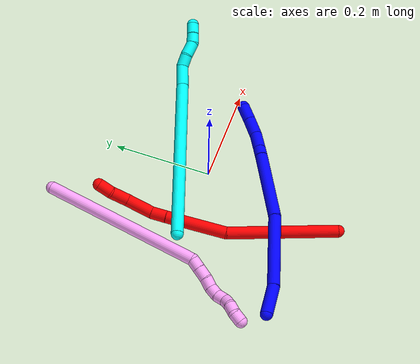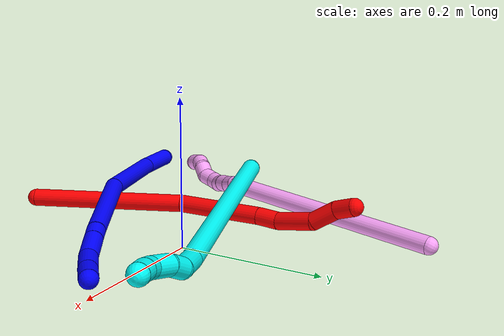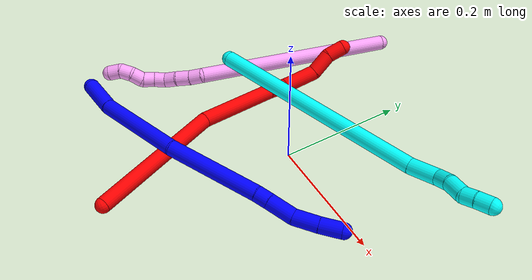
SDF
<sdf version="1.7">
 <world name="default">
  <model name="1">
   <static>0</static>
   <link name="1">
    <collision name="collision-cylinder-e_1_1_4">
     <pose>0.006811 0.014128 -0.026412 -2.6504 0.223582 -0.842146</pose>
     <geometry><cylinder><radius>0.0125</radius><length>0.061436</length></cylinder></geometry>
     <surface>
      <friction><ode><mu>1.16</mu><mu2>1.16</mu2><slip1>0</slip1><slip2>0</slip2></ode></friction>
      <contact><ode><kp>1e+06</kp><kd>1</kd><max_vel>0</max_vel><min_depth>0.001</min_depth></ode></contact>
     </surface>
    </collision>
    <visual name="visual-cylinder-e_1_1_4">
     <pose>0.006811 0.014128 -0.026412 -2.6504 0.223582 -0.842146</pose>
     <geometry><cylinder><radius>0.0125</radius><length>0.061436</length></cylinder></geometry>
     <material><ambient>0 0 1 1</ambient></material>
    </visual>
    <collision name="collision-cylinder-e_2_4_5">
     <pose>0.019662 0.052117 -0.123204 -2.81473 0.081095 -0.48247</pose>
     <geometry><cylinder><radius>0.0125</radius><length>0.149119</length></cylinder></geometry>
     <surface>
      <friction><ode><mu>1.16</mu><mu2>1.16</mu2><slip1>0</slip1><slip2>0</slip2></ode></friction>
      <contact><ode><kp>1e+06</kp><kd>1</kd><max_vel>0</max_vel><min_depth>0.001</min_depth></ode></contact>
     </surface>
    </collision>
    <visual name="visual-cylinder-e_2_4_5">
     <pose>0.019662 0.052117 -0.123204 -2.81473 0.081095 -0.48247</pose>
     <geometry><cylinder><radius>0.0125</radius><length>0.149119</length></cylinder></geometry>
     <material><ambient>0 0 1 1</ambient></material>
    </visual>
    <collision name="collision-cylinder-e_3_5_6">
     <pose>0.034975 0.082696 -0.268563 -3.05222 0.122565 -1.88207</pose>
     <geometry><cylinder><radius>0.0125</radius><length>0.151698</length></cylinder></geometry>
     <surface>
      <friction><ode><mu>1.16</mu><mu2>1.16</mu2><slip1>0</slip1><slip2>0</slip2></ode></friction>
      <contact><ode><kp>1e+06</kp><kd>1</kd><max_vel>0</max_vel><min_depth>0.001</min_depth></ode></contact>
     </surface>
    </collision>
    <visual name="visual-cylinder-e_3_5_6">
     <pose>0.034975 0.082696 -0.268563 -3.05222 0.122565 -1.88207</pose>
     <geometry><cylinder><radius>0.0125</radius><length>0.151698</length></cylinder></geometry>
     <material><ambient>0 0 1 1</ambient></material>
    </visual>
    <collision name="collision-cylinder-e_4_6_7">
     <pose>0.046597 0.089692 -0.353831 -3.11467 0.224391 -2.90373</pose>
     <geometry><cylinder><radius>0.0125</radius><length>0.021113</length></cylinder></geometry>
     <surface>
      <friction><ode><mu>1.16</mu><mu2>1.16</mu2><slip1>0</slip1><slip2>0</slip2></ode></friction>
      <contact><ode><kp>1e+06</kp><kd>1</kd><max_vel>0</max_vel><min_depth>0.001</min_depth></ode></contact>
     </surface>
    </collision>
    <visual name="visual-cylinder-e_4_6_7">
     <pose>0.046597 0.089692 -0.353831 -3.11467 0.224391 -2.90373</pose>
     <geometry><cylinder><radius>0.0125</radius><length>0.021113</length></cylinder></geometry>
     <material><ambient>0 0 1 1</ambient></material>
    </visual>
    <collision name="collision-cylinder-e_5_7_8">
     <pose>0.054109 0.090198 -0.384423 -3.13034 0.248986 -3.05176</pose>
     <geometry><cylinder><radius>0.0125</radius><length>0.041903</length></cylinder></geometry>
     <surface>
      <friction><ode><mu>1.16</mu><mu2>1.16</mu2><slip1>0</slip1><slip2>0</slip2></ode></friction>
      <contact><ode><kp>1e+06</kp><kd>1</kd><max_vel>0</max_vel><min_depth>0.001</min_depth></ode></contact>
     </surface>
    </collision>
    <visual name="visual-cylinder-e_5_7_8">
     <pose>0.054109 0.090198 -0.384423 -3.13034 0.248986 -3.05176</pose>
     <geometry><cylinder><radius>0.0125</radius><length>0.041903</length></cylinder></geometry>
     <material><ambient>0 0 1 1</ambient></material>
    </visual>
    <collision name="collision-cylinder-e_6_8_9">
     <pose>0.058661 0.090044 -0.424557 3.12232 -0.03077 -2.02262</pose>
     <geometry><cylinder><radius>0.0125</radius><length>0.039686</length></cylinder></geometry>
     <surface>
      <friction><ode><mu>1.16</mu><mu2>1.16</mu2><slip1>0</slip1><slip2>0</slip2></ode></friction>
      <contact><ode><kp>1e+06</kp><kd>1</kd><max_vel>0</max_vel><min_depth>0.001</min_depth></ode></contact>
     </surface>
    </collision>
    <visual name="visual-cylinder-e_6_8_9">
     <pose>0.058661 0.090044 -0.424557 3.12232 -0.03077 -2.02262</pose>
     <geometry><cylinder><radius>0.0125</radius><length>0.039686</length></cylinder></geometry>
     <material><ambient>0 0 1 1</ambient></material>
    </visual>
    <collision name="collision-cylinder-e_7_9_2">
     <pose>0.056329 0.089189 -0.461818 3.1145 -0.098383 -2.60448</pose>
     <geometry><cylinder><radius>0.0125</radius><length>0.035046</length></cylinder></geometry>
     <surface>
      <friction><ode><mu>1.16</mu><mu2>1.16</mu2><slip1>0</slip1><slip2>0</slip2></ode></friction>
      <contact><ode><kp>1e+06</kp><kd>1</kd><max_vel>0</max_vel><min_depth>0.001</min_depth></ode></contact>
     </surface>
    </collision>
    <visual name="visual-cylinder-e_7_9_2">
     <pose>0.056329 0.089189 -0.461818 3.1145 -0.098383 -2.60448</pose>
     <geometry><cylinder><radius>0.0125</radius><length>0.035046</length></cylinder></geometry>
     <material><ambient>0 0 1 1</ambient></material>
    </visual>
    <collision name="collision-sphere-2">
     <pose>0.054608 0.088717 -0.47925 0 -0 0</pose>
     <geometry><sphere><radius>0.0125</radius></sphere></geometry>
     <surface>
      <friction><ode><mu>1.16</mu><mu2>1.16</mu2><slip1>0</slip1><slip2>0</slip2></ode></friction>
      <contact><ode><kp>1e+06</kp><kd>1</kd><max_vel>0</max_vel><min_depth>0.001</min_depth></ode></contact>
     </surface>
    </collision>
    <visual name="visual-sphere-2">
     <pose>0.054608 0.088717 -0.47925 0 -0 0</pose>
     <geometry><sphere><radius>0.0125</radius></sphere></geometry>
     <material><ambient>0 0 1 1</ambient></material>
    </visual>
    <collision name="collision-sphere-9">
     <pose>0.058051 0.089662 -0.444387 0 -0 0</pose>
     <geometry><sphere><radius>0.0125</radius></sphere></geometry>
     <surface>
      <friction><ode><mu>1.16</mu><mu2>1.16</mu2><slip1>0</slip1><slip2>0</slip2></ode></friction>
      <contact><ode><kp>1e+06</kp><kd>1</kd><max_vel>0</max_vel><min_depth>0.001</min_depth></ode></contact>
     </surface>
    </collision>
    <visual name="visual-sphere-9">
     <pose>0.058051 0.089662 -0.444387 0 -0 0</pose>
     <geometry><sphere><radius>0.0125</radius></sphere></geometry>
     <material><ambient>0 0 1 1</ambient></material>
    </visual>
    <collision name="collision-sphere-4">
     <pose>0.013622 0.028257 -0.052824 0 -0 0</pose>
     <geometry><sphere><radius>0.0125</radius></sphere></geometry>
     <surface>
      <friction><ode><mu>1.16</mu><mu2>1.16</mu2><slip1>0</slip1><slip2>0</slip2></ode></friction>
      <contact><ode><kp>1e+06</kp><kd>1</kd><max_vel>0</max_vel><min_depth>0.001</min_depth></ode></contact>
     </surface>
    </collision>
    <visual name="visual-sphere-4">
     <pose>0.013622 0.028257 -0.052824 0 -0 0</pose>
     <geometry><sphere><radius>0.0125</radius></sphere></geometry>
     <material><ambient>0 0 1 1</ambient></material>
    </visual>
    <collision name="collision-sphere-1">
     <geometry><sphere><radius>0.0125</radius></sphere></geometry>
     <surface>
      <friction><ode><mu>1.16</mu><mu2>1.16</mu2><slip1>0</slip1><slip2>0</slip2></ode></friction>
      <contact><ode><kp>1e+06</kp><kd>1</kd><max_vel>0</max_vel><min_depth>0.001</min_depth></ode></contact>
     </surface>
    </collision>
    <visual name="visual-sphere-1">
     <geometry><sphere><radius>0.0125</radius></sphere></geometry>
     <material><ambient>0 0 1 1</ambient></material>
    </visual>
    <collision name="collision-sphere-8">
     <pose>0.059272 0.090426 -0.404727 0 -0 0</pose>
     <geometry><sphere><radius>0.0125</radius></sphere></geometry>
     <surface>
      <friction><ode><mu>1.16</mu><mu2>1.16</mu2><slip1>0</slip1><slip2>0</slip2></ode></friction>
      <contact><ode><kp>1e+06</kp><kd>1</kd><max_vel>0</max_vel><min_depth>0.001</min_depth></ode></contact>
     </surface>
    </collision>
    <visual name="visual-sphere-8">
     <pose>0.059272 0.090426 -0.404727 0 -0 0</pose>
     <geometry><sphere><radius>0.0125</radius></sphere></geometry>
     <material><ambient>0 0 1 1</ambient></material>
    </visual>
    <collision name="collision-sphere-5">
     <pose>0.025701 0.075977 -0.193583 0 -0 0</pose>
     <geometry><sphere><radius>0.0125</radius></sphere></geometry>
     <surface>
      <friction><ode><mu>1.16</mu><mu2>1.16</mu2><slip1>0</slip1><slip2>0</slip2></ode></friction>
      <contact><ode><kp>1e+06</kp><kd>1</kd><max_vel>0</max_vel><min_depth>0.001</min_depth></ode></contact>
     </surface>
    </collision>
    <visual name="visual-sphere-5">
     <pose>0.025701 0.075977 -0.193583 0 -0 0</pose>
     <geometry><sphere><radius>0.0125</radius></sphere></geometry>
     <material><ambient>0 0 1 1</ambient></material>
    </visual>
    <collision name="collision-sphere-6">
     <pose>0.044248 0.089415 -0.343543 0 -0 0</pose>
     <geometry><sphere><radius>0.0125</radius></sphere></geometry>
     <surface>
      <friction><ode><mu>1.16</mu><mu2>1.16</mu2><slip1>0</slip1><slip2>0</slip2></ode></friction>
      <contact><ode><kp>1e+06</kp><kd>1</kd><max_vel>0</max_vel><min_depth>0.001</min_depth></ode></contact>
     </surface>
    </collision>
    <visual name="visual-sphere-6">
     <pose>0.044248 0.089415 -0.343543 0 -0 0</pose>
     <geometry><sphere><radius>0.0125</radius></sphere></geometry>
     <material><ambient>0 0 1 1</ambient></material>
    </visual>
    <collision name="collision-sphere-7">
     <pose>0.048946 0.089969 -0.364119 0 -0 0</pose>
     <geometry><sphere><radius>0.0125</radius></sphere></geometry>
     <surface>
      <friction><ode><mu>1.16</mu><mu2>1.16</mu2><slip1>0</slip1><slip2>0</slip2></ode></friction>
      <contact><ode><kp>1e+06</kp><kd>1</kd><max_vel>0</max_vel><min_depth>0.001</min_depth></ode></contact>
     </surface>
    </collision>
    <visual name="visual-sphere-7">
     <pose>0.048946 0.089969 -0.364119 0 -0 0</pose>
     <geometry><sphere><radius>0.0125</radius></sphere></geometry>
     <material><ambient>0 0 1 1</ambient></material>
    </visual>
    <inertial>
     <pose>0.032418 0.067114 -0.234695 0 -0 0</pose>
     <mass>0.5</mass>
     <inertia>
      <ixx>-0.000275</ixx>
      <ixy>0</ixy>
      <ixz>0</ixz>
      <iyy>-0.000564</iyy>
      <iyz>0</iyz>
      <izz>-0.000229</izz>
     </inertia>
    </inertial>
   </link>
   <pose>-0.275324 -0.213417 0.031388 1.51904 1.0675 -0.989179</pose>
  </model>
  <model name="2">
   <static>0</static>
   <link name="2">
    <collision name="collision-cylinder-e_1_1_4">
     <pose>-0.018176 0.059608 -0.091629 -2.56485 -0.164773 0.542975</pose>
     <geometry><cylinder><radius>0.0125</radius><length>0.221625</length></cylinder></geometry>
     <surface>
      <friction><ode><mu>1.16</mu><mu2>1.16</mu2><slip1>0</slip1><slip2>0</slip2></ode></friction>
      <contact><ode><kp>1e+06</kp><kd>1</kd><max_vel>0</max_vel><min_depth>0.001</min_depth></ode></contact>
     </surface>
    </collision>
    <visual name="visual-cylinder-e_1_1_4">
     <pose>-0.018176 0.059608 -0.091629 -2.56485 -0.164773 0.542975</pose>
     <geometry><cylinder><radius>0.0125</radius><length>0.221625</length></cylinder></geometry>
     <material><ambient>1 0 0 1</ambient></material>
    </visual>
    <collision name="collision-cylinder-e_2_4_5">
     <pose>-0.05056 0.134498 -0.242019 -2.88715 -0.229863 1.46839</pose>
     <geometry><cylinder><radius>0.0125</radius><length>0.12471</length></cylinder></geometry>
     <surface>
      <friction><ode><mu>1.16</mu><mu2>1.16</mu2><slip1>0</slip1><slip2>0</slip2></ode></friction>
      <contact><ode><kp>1e+06</kp><kd>1</kd><max_vel>0</max_vel><min_depth>0.001</min_depth></ode></contact>
     </surface>
    </collision>
    <visual name="visual-cylinder-e_2_4_5">
     <pose>-0.05056 0.134498 -0.242019 -2.88715 -0.229863 1.46839</pose>
     <geometry><cylinder><radius>0.0125</radius><length>0.12471</length></cylinder></geometry>
     <material><ambient>1 0 0 1</ambient></material>
    </visual>
    <collision name="collision-cylinder-e_3_5_6">
     <pose>-0.069348 0.152866 -0.315447 -2.9342 -0.29655 1.92457</pose>
     <geometry><cylinder><radius>0.0125</radius><length>0.031348</length></cylinder></geometry>
     <surface>
      <friction><ode><mu>1.16</mu><mu2>1.16</mu2><slip1>0</slip1><slip2>0</slip2></ode></friction>
      <contact><ode><kp>1e+06</kp><kd>1</kd><max_vel>0</max_vel><min_depth>0.001</min_depth></ode></contact>
     </surface>
    </collision>
    <visual name="visual-cylinder-e_3_5_6">
     <pose>-0.069348 0.152866 -0.315447 -2.9342 -0.29655 1.92457</pose>
     <geometry><cylinder><radius>0.0125</radius><length>0.031348</length></cylinder></geometry>
     <material><ambient>1 0 0 1</ambient></material>
    </visual>
    <collision name="collision-cylinder-e_4_6_7">
     <pose>-0.075839 0.158396 -0.357921 -3.05393 -0.068382 1.3247</pose>
     <geometry><cylinder><radius>0.0125</radius><length>0.055955</length></cylinder></geometry>
     <surface>
      <friction><ode><mu>1.16</mu><mu2>1.16</mu2><slip1>0</slip1><slip2>0</slip2></ode></friction>
      <contact><ode><kp>1e+06</kp><kd>1</kd><max_vel>0</max_vel><min_depth>0.001</min_depth></ode></contact>
     </surface>
    </collision>
    <visual name="visual-cylinder-e_4_6_7">
     <pose>-0.075839 0.158396 -0.357921 -3.05393 -0.068382 1.3247</pose>
     <geometry><cylinder><radius>0.0125</radius><length>0.055955</length></cylinder></geometry>
     <material><ambient>1 0 0 1</ambient></material>
    </visual>
    <collision name="collision-cylinder-e_5_7_8">
     <pose>-0.071465 0.165715 -0.402671 -2.86147 0.342465 -1.77361</pose>
     <geometry><cylinder><radius>0.0125</radius><length>0.03744</length></cylinder></geometry>
     <surface>
      <friction><ode><mu>1.16</mu><mu2>1.16</mu2><slip1>0</slip1><slip2>0</slip2></ode></friction>
      <contact><ode><kp>1e+06</kp><kd>1</kd><max_vel>0</max_vel><min_depth>0.001</min_depth></ode></contact>
     </surface>
    </collision>
    <visual name="visual-cylinder-e_5_7_8">
     <pose>-0.071465 0.165715 -0.402671 -2.86147 0.342465 -1.77361</pose>
     <geometry><cylinder><radius>0.0125</radius><length>0.03744</length></cylinder></geometry>
     <material><ambient>1 0 0 1</ambient></material>
    </visual>
    <collision name="collision-cylinder-e_6_8_2">
     <pose>-0.064114 0.171036 -0.434032 -3.11069 0.073638 -2.3472</pose>
     <geometry><cylinder><radius>0.0125</radius><length>0.028923</length></cylinder></geometry>
     <surface>
      <friction><ode><mu>1.16</mu><mu2>1.16</mu2><slip1>0</slip1><slip2>0</slip2></ode></friction>
      <contact><ode><kp>1e+06</kp><kd>1</kd><max_vel>0</max_vel><min_depth>0.001</min_depth></ode></contact>
     </surface>
    </collision>
    <visual name="visual-cylinder-e_6_8_2">
     <pose>-0.064114 0.171036 -0.434032 -3.11069 0.073638 -2.3472</pose>
     <geometry><cylinder><radius>0.0125</radius><length>0.028923</length></cylinder></geometry>
     <material><ambient>1 0 0 1</ambient></material>
    </visual>
    <collision name="collision-sphere-2">
     <pose>-0.06305 0.171481 -0.448447 0 -0 0</pose>
     <geometry><sphere><radius>0.0125</radius></sphere></geometry>
     <surface>
      <friction><ode><mu>1.16</mu><mu2>1.16</mu2><slip1>0</slip1><slip2>0</slip2></ode></friction>
      <contact><ode><kp>1e+06</kp><kd>1</kd><max_vel>0</max_vel><min_depth>0.001</min_depth></ode></contact>
     </surface>
    </collision>
    <visual name="visual-sphere-2">
     <pose>-0.06305 0.171481 -0.448447 0 -0 0</pose>
     <geometry><sphere><radius>0.0125</radius></sphere></geometry>
     <material><ambient>1 0 0 1</ambient></material>
    </visual>
    <collision name="collision-sphere-4">
     <pose>-0.036353 0.119215 -0.183259 0 -0 0</pose>
     <geometry><sphere><radius>0.0125</radius></sphere></geometry>
     <surface>
      <friction><ode><mu>1.16</mu><mu2>1.16</mu2><slip1>0</slip1><slip2>0</slip2></ode></friction>
      <contact><ode><kp>1e+06</kp><kd>1</kd><max_vel>0</max_vel><min_depth>0.001</min_depth></ode></contact>
     </surface>
    </collision>
    <visual name="visual-sphere-4">
     <pose>-0.036353 0.119215 -0.183259 0 -0 0</pose>
     <geometry><sphere><radius>0.0125</radius></sphere></geometry>
     <material><ambient>1 0 0 1</ambient></material>
    </visual>
    <collision name="collision-sphere-1">
     <geometry><sphere><radius>0.0125</radius></sphere></geometry>
     <surface>
      <friction><ode><mu>1.16</mu><mu2>1.16</mu2><slip1>0</slip1><slip2>0</slip2></ode></friction>
      <contact><ode><kp>1e+06</kp><kd>1</kd><max_vel>0</max_vel><min_depth>0.001</min_depth></ode></contact>
     </surface>
    </collision>
    <visual name="visual-sphere-1">
     <geometry><sphere><radius>0.0125</radius></sphere></geometry>
     <material><ambient>1 0 0 1</ambient></material>
    </visual>
    <collision name="collision-sphere-8">
     <pose>-0.065178 0.17059 -0.419617 0 -0 0</pose>
     <geometry><sphere><radius>0.0125</radius></sphere></geometry>
     <surface>
      <friction><ode><mu>1.16</mu><mu2>1.16</mu2><slip1>0</slip1><slip2>0</slip2></ode></friction>
      <contact><ode><kp>1e+06</kp><kd>1</kd><max_vel>0</max_vel><min_depth>0.001</min_depth></ode></contact>
     </surface>
    </collision>
    <visual name="visual-sphere-8">
     <pose>-0.065178 0.17059 -0.419617 0 -0 0</pose>
     <geometry><sphere><radius>0.0125</radius></sphere></geometry>
     <material><ambient>1 0 0 1</ambient></material>
    </visual>
    <collision name="collision-sphere-5">
     <pose>-0.064767 0.14978 -0.300779 0 -0 0</pose>
     <geometry><sphere><radius>0.0125</radius></sphere></geometry>
     <surface>
      <friction><ode><mu>1.16</mu><mu2>1.16</mu2><slip1>0</slip1><slip2>0</slip2></ode></friction>
      <contact><ode><kp>1e+06</kp><kd>1</kd><max_vel>0</max_vel><min_depth>0.001</min_depth></ode></contact>
     </surface>
    </collision>
    <visual name="visual-sphere-5">
     <pose>-0.064767 0.14978 -0.300779 0 -0 0</pose>
     <geometry><sphere><radius>0.0125</radius></sphere></geometry>
     <material><ambient>1 0 0 1</ambient></material>
    </visual>
    <collision name="collision-sphere-6">
     <pose>-0.073928 0.155953 -0.330116 0 -0 0</pose>
     <geometry><sphere><radius>0.0125</radius></sphere></geometry>
     <surface>
      <friction><ode><mu>1.16</mu><mu2>1.16</mu2><slip1>0</slip1><slip2>0</slip2></ode></friction>
      <contact><ode><kp>1e+06</kp><kd>1</kd><max_vel>0</max_vel><min_depth>0.001</min_depth></ode></contact>
     </surface>
    </collision>
    <visual name="visual-sphere-6">
     <pose>-0.073928 0.155953 -0.330116 0 -0 0</pose>
     <geometry><sphere><radius>0.0125</radius></sphere></geometry>
     <material><ambient>1 0 0 1</ambient></material>
    </visual>
    <collision name="collision-sphere-7">
     <pose>-0.077751 0.16084 -0.385725 0 -0 0</pose>
     <geometry><sphere><radius>0.0125</radius></sphere></geometry>
     <surface>
      <friction><ode><mu>1.16</mu><mu2>1.16</mu2><slip1>0</slip1><slip2>0</slip2></ode></friction>
      <contact><ode><kp>1e+06</kp><kd>1</kd><max_vel>0</max_vel><min_depth>0.001</min_depth></ode></contact>
     </surface>
    </collision>
    <visual name="visual-sphere-7">
     <pose>-0.077751 0.16084 -0.385725 0 -0 0</pose>
     <geometry><sphere><radius>0.0125</radius></sphere></geometry>
     <material><ambient>1 0 0 1</ambient></material>
    </visual>
    <inertial>
     <pose>-0.042562 0.10958 -0.21607 0 -0 0</pose>
     <mass>0.5</mass>
     <inertia>
      <ixx>0.001425</ixx>
      <ixy>0</ixy>
      <ixz>0</ixz>
      <iyy>3.3e-05</iyy>
      <iyz>0</iyz>
      <izz>-0.000384</izz>
     </inertia>
    </inertial>
   </link>
   <pose>-0.044936 -0.288446 0.012255 -2.819 -1.29795 -2.08427</pose>
  </model>
  <model name="3">
   <static>0</static>
   <link name="3">
    <collision name="collision-cylinder-e_1_1_4">
     <pose>0.004466 0.000245 0.177724 -0.001377 0.025125 -1.7e-05</pose>
     <geometry><cylinder><radius>0.0125</radius><length>0.35556</length></cylinder></geometry>
     <surface>
      <friction><ode><mu>1.16</mu><mu2>1.16</mu2><slip1>0</slip1><slip2>0</slip2></ode></friction>
      <contact><ode><kp>1e+06</kp><kd>1</kd><max_vel>0</max_vel><min_depth>0.001</min_depth></ode></contact>
     </surface>
    </collision>
    <visual name="visual-cylinder-e_1_1_4">
     <pose>0.004466 0.000245 0.177724 -0.001377 0.025125 -1.7e-05</pose>
     <geometry><cylinder><radius>0.0125</radius><length>0.35556</length></cylinder></geometry>
     <material><ambient>0.003922 1 0.996078 1</ambient></material>
    </visual>
    <collision name="collision-cylinder-e_2_4_5">
     <pose>0.01314 -0.001488 0.37801 0.087393 0.183687 0.008054</pose>
     <geometry><cylinder><radius>0.0125</radius><length>0.046073</length></cylinder></geometry>
     <surface>
      <friction><ode><mu>1.16</mu><mu2>1.16</mu2><slip1>0</slip1><slip2>0</slip2></ode></friction>
      <contact><ode><kp>1e+06</kp><kd>1</kd><max_vel>0</max_vel><min_depth>0.001</min_depth></ode></contact>
     </surface>
    </collision>
    <visual name="visual-cylinder-e_2_4_5">
     <pose>0.01314 -0.001488 0.37801 0.087393 0.183687 0.008054</pose>
     <geometry><cylinder><radius>0.0125</radius><length>0.046073</length></cylinder></geometry>
     <material><ambient>0.003922 1 0.996078 1</ambient></material>
    </visual>
    <collision name="collision-cylinder-e_3_5_6">
     <pose>0.024463 -0.001604 0.41077 -0.180479 0.601514 -0.056116</pose>
     <geometry><cylinder><radius>0.0125</radius><length>0.025146</length></cylinder></geometry>
     <surface>
      <friction><ode><mu>1.16</mu><mu2>1.16</mu2><slip1>0</slip1><slip2>0</slip2></ode></friction>
      <contact><ode><kp>1e+06</kp><kd>1</kd><max_vel>0</max_vel><min_depth>0.001</min_depth></ode></contact>
     </surface>
    </collision>
    <visual name="visual-cylinder-e_3_5_6">
     <pose>0.024463 -0.001604 0.41077 -0.180479 0.601514 -0.056116</pose>
     <geometry><cylinder><radius>0.0125</radius><length>0.025146</length></cylinder></geometry>
     <material><ambient>0.003922 1 0.996078 1</ambient></material>
    </visual>
    <collision name="collision-cylinder-e_4_6_7">
     <pose>0.037156 0.004991 0.43415 -0.34481 0.378977 -0.066769</pose>
     <geometry><cylinder><radius>0.0125</radius><length>0.030152</length></cylinder></geometry>
     <surface>
      <friction><ode><mu>1.16</mu><mu2>1.16</mu2><slip1>0</slip1><slip2>0</slip2></ode></friction>
      <contact><ode><kp>1e+06</kp><kd>1</kd><max_vel>0</max_vel><min_depth>0.001</min_depth></ode></contact>
     </surface>
    </collision>
    <visual name="visual-cylinder-e_4_6_7">
     <pose>0.037156 0.004991 0.43415 -0.34481 0.378977 -0.066769</pose>
     <geometry><cylinder><radius>0.0125</radius><length>0.030152</length></cylinder></geometry>
     <material><ambient>0.003922 1 0.996078 1</ambient></material>
    </visual>
    <collision name="collision-cylinder-e_5_7_8">
     <pose>0.045746 0.008811 0.457 0.094371 0.300785 0.014311</pose>
     <geometry><cylinder><radius>0.0125</radius><length>0.020335</length></cylinder></geometry>
     <surface>
      <friction><ode><mu>1.16</mu><mu2>1.16</mu2><slip1>0</slip1><slip2>0</slip2></ode></friction>
      <contact><ode><kp>1e+06</kp><kd>1</kd><max_vel>0</max_vel><min_depth>0.001</min_depth></ode></contact>
     </surface>
    </collision>
    <visual name="visual-cylinder-e_5_7_8">
     <pose>0.045746 0.008811 0.457 0.094371 0.300785 0.014311</pose>
     <geometry><cylinder><radius>0.0125</radius><length>0.020335</length></cylinder></geometry>
     <material><ambient>0.003922 1 0.996078 1</ambient></material>
    </visual>
    <collision name="collision-cylinder-e_6_8_2">
     <pose>0.050987 0.006859 0.477766 0.093105 0.197377 0.009225</pose>
     <geometry><cylinder><radius>0.0125</radius><length>0.022734</length></cylinder></geometry>
     <surface>
      <friction><ode><mu>1.16</mu><mu2>1.16</mu2><slip1>0</slip1><slip2>0</slip2></ode></friction>
      <contact><ode><kp>1e+06</kp><kd>1</kd><max_vel>0</max_vel><min_depth>0.001</min_depth></ode></contact>
     </surface>
    </collision>
    <visual name="visual-cylinder-e_6_8_2">
     <pose>0.050987 0.006859 0.477766 0.093105 0.197377 0.009225</pose>
     <geometry><cylinder><radius>0.0125</radius><length>0.022734</length></cylinder></geometry>
     <material><ambient>0.003922 1 0.996078 1</ambient></material>
    </visual>
    <collision name="collision-sphere-2">
     <pose>0.053216 0.005823 0.488864 0 -0 0</pose>
     <geometry><sphere><radius>0.0125</radius></sphere></geometry>
     <surface>
      <friction><ode><mu>1.16</mu><mu2>1.16</mu2><slip1>0</slip1><slip2>0</slip2></ode></friction>
      <contact><ode><kp>1e+06</kp><kd>1</kd><max_vel>0</max_vel><min_depth>0.001</min_depth></ode></contact>
     </surface>
    </collision>
    <visual name="visual-sphere-2">
     <pose>0.053216 0.005823 0.488864 0 -0 0</pose>
     <geometry><sphere><radius>0.0125</radius></sphere></geometry>
     <material><ambient>0.003922 1 0.996078 1</ambient></material>
    </visual>
    <collision name="collision-sphere-4">
     <pose>0.008933 0.000489 0.355447 0 -0 0</pose>
     <geometry><sphere><radius>0.0125</radius></sphere></geometry>
     <surface>
      <friction><ode><mu>1.16</mu><mu2>1.16</mu2><slip1>0</slip1><slip2>0</slip2></ode></friction>
      <contact><ode><kp>1e+06</kp><kd>1</kd><max_vel>0</max_vel><min_depth>0.001</min_depth></ode></contact>
     </surface>
    </collision>
    <visual name="visual-sphere-4">
     <pose>0.008933 0.000489 0.355447 0 -0 0</pose>
     <geometry><sphere><radius>0.0125</radius></sphere></geometry>
     <material><ambient>0.003922 1 0.996078 1</ambient></material>
    </visual>
    <collision name="collision-sphere-1">
     <geometry><sphere><radius>0.0125</radius></sphere></geometry>
     <surface>
      <friction><ode><mu>1.16</mu><mu2>1.16</mu2><slip1>0</slip1><slip2>0</slip2></ode></friction>
      <contact><ode><kp>1e+06</kp><kd>1</kd><max_vel>0</max_vel><min_depth>0.001</min_depth></ode></contact>
     </surface>
    </collision>
    <visual name="visual-sphere-1">
     <geometry><sphere><radius>0.0125</radius></sphere></geometry>
     <material><ambient>0.003922 1 0.996078 1</ambient></material>
    </visual>
    <collision name="collision-sphere-8">
     <pose>0.048758 0.007896 0.466668 0 -0 0</pose>
     <geometry><sphere><radius>0.0125</radius></sphere></geometry>
     <surface>
      <friction><ode><mu>1.16</mu><mu2>1.16</mu2><slip1>0</slip1><slip2>0</slip2></ode></friction>
      <contact><ode><kp>1e+06</kp><kd>1</kd><max_vel>0</max_vel><min_depth>0.001</min_depth></ode></contact>
     </surface>
    </collision>
    <visual name="visual-sphere-8">
     <pose>0.048758 0.007896 0.466668 0 -0 0</pose>
     <geometry><sphere><radius>0.0125</radius></sphere></geometry>
     <material><ambient>0.003922 1 0.996078 1</ambient></material>
    </visual>
    <collision name="collision-sphere-5">
     <pose>0.017348 -0.003464 0.400573 0 -0 0</pose>
     <geometry><sphere><radius>0.0125</radius></sphere></geometry>
     <surface>
      <friction><ode><mu>1.16</mu><mu2>1.16</mu2><slip1>0</slip1><slip2>0</slip2></ode></friction>
      <contact><ode><kp>1e+06</kp><kd>1</kd><max_vel>0</max_vel><min_depth>0.001</min_depth></ode></contact>
     </surface>
    </collision>
    <visual name="visual-sphere-5">
     <pose>0.017348 -0.003464 0.400573 0 -0 0</pose>
     <geometry><sphere><radius>0.0125</radius></sphere></geometry>
     <material><ambient>0.003922 1 0.996078 1</ambient></material>
    </visual>
    <collision name="collision-sphere-6">
     <pose>0.031578 0.000257 0.420968 0 -0 0</pose>
     <geometry><sphere><radius>0.0125</radius></sphere></geometry>
     <surface>
      <friction><ode><mu>1.16</mu><mu2>1.16</mu2><slip1>0</slip1><slip2>0</slip2></ode></friction>
      <contact><ode><kp>1e+06</kp><kd>1</kd><max_vel>0</max_vel><min_depth>0.001</min_depth></ode></contact>
     </surface>
    </collision>
    <visual name="visual-sphere-6">
     <pose>0.031578 0.000257 0.420968 0 -0 0</pose>
     <geometry><sphere><radius>0.0125</radius></sphere></geometry>
     <material><ambient>0.003922 1 0.996078 1</ambient></material>
    </visual>
    <collision name="collision-sphere-7">
     <pose>0.042733 0.009726 0.447332 0 -0 0</pose>
     <geometry><sphere><radius>0.0125</radius></sphere></geometry>
     <surface>
      <friction><ode><mu>1.16</mu><mu2>1.16</mu2><slip1>0</slip1><slip2>0</slip2></ode></friction>
      <contact><ode><kp>1e+06</kp><kd>1</kd><max_vel>0</max_vel><min_depth>0.001</min_depth></ode></contact>
     </surface>
    </collision>
    <visual name="visual-sphere-7">
     <pose>0.042733 0.009726 0.447332 0 -0 0</pose>
     <geometry><sphere><radius>0.0125</radius></sphere></geometry>
     <material><ambient>0.003922 1 0.996078 1</ambient></material>
    </visual>
    <inertial>
     <pose>0.012037 0.000927 0.248364 0 -0 0</pose>
     <mass>0.5</mass>
     <inertia>
      <ixx>0.003781</ixx>
      <ixy>0</ixy>
      <ixz>0</ixz>
      <iyy>0.003779</iyy>
      <iyz>0</iyz>
      <izz>-6.7e-05</izz>
     </inertia>
    </inertial>
   </link>
   <pose>-0.185619 -0.000401 0.0641 -1.70533 -1.23285 -1.11351</pose>
  </model>
  <model name="4">
   <static>0</static>
   <link name="4">
    <collision name="collision-cylinder-e_1_1_4">
     <pose>-0.041162 -0.103987 -0.12363 2.44228 -0.249488 -0.662437</pose>
     <geometry><cylinder><radius>0.0125</radius><length>0.333418</length></cylinder></geometry>
     <surface>
      <friction><ode><mu>1.16</mu><mu2>1.16</mu2><slip1>0</slip1><slip2>0</slip2></ode></friction>
      <contact><ode><kp>1e+06</kp><kd>1</kd><max_vel>0</max_vel><min_depth>0.001</min_depth></ode></contact>
     </surface>
    </collision>
    <visual name="visual-cylinder-e_1_1_4">
     <pose>-0.041162 -0.103987 -0.12363 2.44228 -0.249488 -0.662437</pose>
     <geometry><cylinder><radius>0.0125</radius><length>0.333418</length></cylinder></geometry>
     <material><ambient>1 0.65098 0.996078 1</ambient></material>
    </visual>
    <collision name="collision-cylinder-e_2_4_5">
     <pose>-0.08625 -0.217264 -0.250692 1.92477 -0.377461 -0.535266</pose>
     <geometry><cylinder><radius>0.0125</radius><length>0.021306</length></cylinder></geometry>
     <surface>
      <friction><ode><mu>1.16</mu><mu2>1.16</mu2><slip1>0</slip1><slip2>0</slip2></ode></friction>
      <contact><ode><kp>1e+06</kp><kd>1</kd><max_vel>0</max_vel><min_depth>0.001</min_depth></ode></contact>
     </surface>
    </collision>
    <visual name="visual-cylinder-e_2_4_5">
     <pose>-0.08625 -0.217264 -0.250692 1.92477 -0.377461 -0.535266</pose>
     <geometry><cylinder><radius>0.0125</radius><length>0.021306</length></cylinder></geometry>
     <material><ambient>1 0.65098 0.996078 1</ambient></material>
    </visual>
    <collision name="collision-cylinder-e_3_5_6">
     <pose>-0.093375 -0.237307 -0.258477 1.95536 -0.269014 -0.396242</pose>
     <geometry><cylinder><radius>0.0125</radius><length>0.024068</length></cylinder></geometry>
     <surface>
      <friction><ode><mu>1.16</mu><mu2>1.16</mu2><slip1>0</slip1><slip2>0</slip2></ode></friction>
      <contact><ode><kp>1e+06</kp><kd>1</kd><max_vel>0</max_vel><min_depth>0.001</min_depth></ode></contact>
     </surface>
    </collision>
    <visual name="visual-cylinder-e_3_5_6">
     <pose>-0.093375 -0.237307 -0.258477 1.95536 -0.269014 -0.396242</pose>
     <geometry><cylinder><radius>0.0125</radius><length>0.024068</length></cylinder></geometry>
     <material><ambient>1 0.65098 0.996078 1</ambient></material>
    </visual>
    <collision name="collision-cylinder-e_4_6_7">
     <pose>-0.100071 -0.257595 -0.264959 1.79058 -0.343861 -0.426831</pose>
     <geometry><cylinder><radius>0.0125</radius><length>0.020753</length></cylinder></geometry>
     <surface>
      <friction><ode><mu>1.16</mu><mu2>1.16</mu2><slip1>0</slip1><slip2>0</slip2></ode></friction>
      <contact><ode><kp>1e+06</kp><kd>1</kd><max_vel>0</max_vel><min_depth>0.001</min_depth></ode></contact>
     </surface>
    </collision>
    <visual name="visual-cylinder-e_4_6_7">
     <pose>-0.100071 -0.257595 -0.264959 1.79058 -0.343861 -0.426831</pose>
     <geometry><cylinder><radius>0.0125</radius><length>0.020753</length></cylinder></geometry>
     <material><ambient>1 0.65098 0.996078 1</ambient></material>
    </visual>
    <collision name="collision-cylinder-e_5_7_8">
     <pose>-0.104643 -0.27593 -0.271862 2.06769 -0.10683 -0.179149</pose>
     <geometry><cylinder><radius>0.0125</radius><length>0.020138</length></cylinder></geometry>
     <surface>
      <friction><ode><mu>1.16</mu><mu2>1.16</mu2><slip1>0</slip1><slip2>0</slip2></ode></friction>
      <contact><ode><kp>1e+06</kp><kd>1</kd><max_vel>0</max_vel><min_depth>0.001</min_depth></ode></contact>
     </surface>
    </collision>
    <visual name="visual-cylinder-e_5_7_8">
     <pose>-0.104643 -0.27593 -0.271862 2.06769 -0.10683 -0.179149</pose>
     <geometry><cylinder><radius>0.0125</radius><length>0.020138</length></cylinder></geometry>
     <material><ambient>1 0.65098 0.996078 1</ambient></material>
    </visual>
    <collision name="collision-cylinder-e_6_8_9">
     <pose>-0.106759 -0.29168 -0.283902 2.37863 -0.103317 -0.256378</pose>
     <geometry><cylinder><radius>0.0125</radius><length>0.020218</length></cylinder></geometry>
     <surface>
      <friction><ode><mu>1.16</mu><mu2>1.16</mu2><slip1>0</slip1><slip2>0</slip2></ode></friction>
      <contact><ode><kp>1e+06</kp><kd>1</kd><max_vel>0</max_vel><min_depth>0.001</min_depth></ode></contact>
     </surface>
    </collision>
    <visual name="visual-cylinder-e_6_8_9">
     <pose>-0.106759 -0.29168 -0.283902 2.37863 -0.103317 -0.256378</pose>
     <geometry><cylinder><radius>0.0125</radius><length>0.020218</length></cylinder></geometry>
     <material><ambient>1 0.65098 0.996078 1</ambient></material>
    </visual>
    <collision name="collision-cylinder-e_7_9_10">
     <pose>-0.10415 -0.306294 -0.296515 2.17972 0.37253 0.69315</pose>
     <geometry><cylinder><radius>0.0125</radius><length>0.020066</length></cylinder></geometry>
     <surface>
      <friction><ode><mu>1.16</mu><mu2>1.16</mu2><slip1>0</slip1><slip2>0</slip2></ode></friction>
      <contact><ode><kp>1e+06</kp><kd>1</kd><max_vel>0</max_vel><min_depth>0.001</min_depth></ode></contact>
     </surface>
    </collision>
    <visual name="visual-cylinder-e_7_9_10">
     <pose>-0.10415 -0.306294 -0.296515 2.17972 0.37253 0.69315</pose>
     <geometry><cylinder><radius>0.0125</radius><length>0.020066</length></cylinder></geometry>
     <material><ambient>1 0.65098 0.996078 1</ambient></material>
    </visual>
    <collision name="collision-cylinder-e_8_10_11">
     <pose>-0.099477 -0.323247 -0.305457 1.94029 0.102226 0.149068</pose>
     <geometry><cylinder><radius>0.0125</radius><length>0.020026</length></cylinder></geometry>
     <surface>
      <friction><ode><mu>1.16</mu><mu2>1.16</mu2><slip1>0</slip1><slip2>0</slip2></ode></friction>
      <contact><ode><kp>1e+06</kp><kd>1</kd><max_vel>0</max_vel><min_depth>0.001</min_depth></ode></contact>
     </surface>
    </collision>
    <visual name="visual-cylinder-e_8_10_11">
     <pose>-0.099477 -0.323247 -0.305457 1.94029 0.102226 0.149068</pose>
     <geometry><cylinder><radius>0.0125</radius><length>0.020026</length></cylinder></geometry>
     <material><ambient>1 0.65098 0.996078 1</ambient></material>
    </visual>
    <collision name="collision-cylinder-e_9_11_2">
     <pose>-0.102124 -0.341036 -0.312841 1.98986 -0.375552 -0.569408</pose>
     <geometry><cylinder><radius>0.0125</radius><length>0.020006</length></cylinder></geometry>
     <surface>
      <friction><ode><mu>1.16</mu><mu2>1.16</mu2><slip1>0</slip1><slip2>0</slip2></ode></friction>
      <contact><ode><kp>1e+06</kp><kd>1</kd><max_vel>0</max_vel><min_depth>0.001</min_depth></ode></contact>
     </surface>
    </collision>
    <visual name="visual-cylinder-e_9_11_2">
     <pose>-0.102124 -0.341036 -0.312841 1.98986 -0.375552 -0.569408</pose>
     <geometry><cylinder><radius>0.0125</radius><length>0.020006</length></cylinder></geometry>
     <material><ambient>1 0.65098 0.996078 1</ambient></material>
    </visual>
    <collision name="collision-sphere-2">
     <pose>-0.105793 -0.349537 -0.316627 0 -0 0</pose>
     <geometry><sphere><radius>0.0125</radius></sphere></geometry>
     <surface>
      <friction><ode><mu>1.16</mu><mu2>1.16</mu2><slip1>0</slip1><slip2>0</slip2></ode></friction>
      <contact><ode><kp>1e+06</kp><kd>1</kd><max_vel>0</max_vel><min_depth>0.001</min_depth></ode></contact>
     </surface>
    </collision>
    <visual name="visual-sphere-2">
     <pose>-0.105793 -0.349537 -0.316627 0 -0 0</pose>
     <geometry><sphere><radius>0.0125</radius></sphere></geometry>
     <material><ambient>1 0.65098 0.996078 1</ambient></material>
    </visual>
    <collision name="collision-sphere-11">
     <pose>-0.098455 -0.332536 -0.309054 0 -0 0</pose>
     <geometry><sphere><radius>0.0125</radius></sphere></geometry>
     <surface>
      <friction><ode><mu>1.16</mu><mu2>1.16</mu2><slip1>0</slip1><slip2>0</slip2></ode></friction>
      <contact><ode><kp>1e+06</kp><kd>1</kd><max_vel>0</max_vel><min_depth>0.001</min_depth></ode></contact>
     </surface>
    </collision>
    <visual name="visual-sphere-11">
     <pose>-0.098455 -0.332536 -0.309054 0 -0 0</pose>
     <geometry><sphere><radius>0.0125</radius></sphere></geometry>
     <material><ambient>1 0.65098 0.996078 1</ambient></material>
    </visual>
    <collision name="collision-sphere-10">
     <pose>-0.100499 -0.313959 -0.30186 0 -0 0</pose>
     <geometry><sphere><radius>0.0125</radius></sphere></geometry>
     <surface>
      <friction><ode><mu>1.16</mu><mu2>1.16</mu2><slip1>0</slip1><slip2>0</slip2></ode></friction>
      <contact><ode><kp>1e+06</kp><kd>1</kd><max_vel>0</max_vel><min_depth>0.001</min_depth></ode></contact>
     </surface>
    </collision>
    <visual name="visual-sphere-10">
     <pose>-0.100499 -0.313959 -0.30186 0 -0 0</pose>
     <geometry><sphere><radius>0.0125</radius></sphere></geometry>
     <material><ambient>1 0.65098 0.996078 1</ambient></material>
    </visual>
    <collision name="collision-sphere-9">
     <pose>-0.107802 -0.298629 -0.29117 0 -0 0</pose>
     <geometry><sphere><radius>0.0125</radius></sphere></geometry>
     <surface>
      <friction><ode><mu>1.16</mu><mu2>1.16</mu2><slip1>0</slip1><slip2>0</slip2></ode></friction>
      <contact><ode><kp>1e+06</kp><kd>1</kd><max_vel>0</max_vel><min_depth>0.001</min_depth></ode></contact>
     </surface>
    </collision>
    <visual name="visual-sphere-9">
     <pose>-0.107802 -0.298629 -0.29117 0 -0 0</pose>
     <geometry><sphere><radius>0.0125</radius></sphere></geometry>
     <material><ambient>1 0.65098 0.996078 1</ambient></material>
    </visual>
    <collision name="collision-sphere-4">
     <pose>-0.082324 -0.207975 -0.247259 0 -0 0</pose>
     <geometry><sphere><radius>0.0125</radius></sphere></geometry>
     <surface>
      <friction><ode><mu>1.16</mu><mu2>1.16</mu2><slip1>0</slip1><slip2>0</slip2></ode></friction>
      <contact><ode><kp>1e+06</kp><kd>1</kd><max_vel>0</max_vel><min_depth>0.001</min_depth></ode></contact>
     </surface>
    </collision>
    <visual name="visual-sphere-4">
     <pose>-0.082324 -0.207975 -0.247259 0 -0 0</pose>
     <geometry><sphere><radius>0.0125</radius></sphere></geometry>
     <material><ambient>1 0.65098 0.996078 1</ambient></material>
    </visual>
    <collision name="collision-sphere-1">
     <geometry><sphere><radius>0.0125</radius></sphere></geometry>
     <surface>
      <friction><ode><mu>1.16</mu><mu2>1.16</mu2><slip1>0</slip1><slip2>0</slip2></ode></friction>
      <contact><ode><kp>1e+06</kp><kd>1</kd><max_vel>0</max_vel><min_depth>0.001</min_depth></ode></contact>
     </surface>
    </collision>
    <visual name="visual-sphere-1">
     <geometry><sphere><radius>0.0125</radius></sphere></geometry>
     <material><ambient>1 0.65098 0.996078 1</ambient></material>
    </visual>
    <collision name="collision-sphere-8">
     <pose>-0.105717 -0.284731 -0.276634 0 -0 0</pose>
     <geometry><sphere><radius>0.0125</radius></sphere></geometry>
     <surface>
      <friction><ode><mu>1.16</mu><mu2>1.16</mu2><slip1>0</slip1><slip2>0</slip2></ode></friction>
      <contact><ode><kp>1e+06</kp><kd>1</kd><max_vel>0</max_vel><min_depth>0.001</min_depth></ode></contact>
     </surface>
    </collision>
    <visual name="visual-sphere-8">
     <pose>-0.105717 -0.284731 -0.276634 0 -0 0</pose>
     <geometry><sphere><radius>0.0125</radius></sphere></geometry>
     <material><ambient>1 0.65098 0.996078 1</ambient></material>
    </visual>
    <collision name="collision-sphere-5">
     <pose>-0.090176 -0.226553 -0.254125 0 -0 0</pose>
     <geometry><sphere><radius>0.0125</radius></sphere></geometry>
     <surface>
      <friction><ode><mu>1.16</mu><mu2>1.16</mu2><slip1>0</slip1><slip2>0</slip2></ode></friction>
      <contact><ode><kp>1e+06</kp><kd>1</kd><max_vel>0</max_vel><min_depth>0.001</min_depth></ode></contact>
     </surface>
    </collision>
    <visual name="visual-sphere-5">
     <pose>-0.090176 -0.226553 -0.254125 0 -0 0</pose>
     <geometry><sphere><radius>0.0125</radius></sphere></geometry>
     <material><ambient>1 0.65098 0.996078 1</ambient></material>
    </visual>
    <collision name="collision-sphere-6">
     <pose>-0.096573 -0.248061 -0.262829 0 -0 0</pose>
     <geometry><sphere><radius>0.0125</radius></sphere></geometry>
     <surface>
      <friction><ode><mu>1.16</mu><mu2>1.16</mu2><slip1>0</slip1><slip2>0</slip2></ode></friction>
      <contact><ode><kp>1e+06</kp><kd>1</kd><max_vel>0</max_vel><min_depth>0.001</min_depth></ode></contact>
     </surface>
    </collision>
    <visual name="visual-sphere-6">
     <pose>-0.096573 -0.248061 -0.262829 0 -0 0</pose>
     <geometry><sphere><radius>0.0125</radius></sphere></geometry>
     <material><ambient>1 0.65098 0.996078 1</ambient></material>
    </visual>
    <collision name="collision-sphere-7">
     <pose>-0.10357 -0.267129 -0.267089 0 -0 0</pose>
     <geometry><sphere><radius>0.0125</radius></sphere></geometry>
     <surface>
      <friction><ode><mu>1.16</mu><mu2>1.16</mu2><slip1>0</slip1><slip2>0</slip2></ode></friction>
      <contact><ode><kp>1e+06</kp><kd>1</kd><max_vel>0</max_vel><min_depth>0.001</min_depth></ode></contact>
     </surface>
    </collision>
    <visual name="visual-sphere-7">
     <pose>-0.10357 -0.267129 -0.267089 0 -0 0</pose>
     <geometry><sphere><radius>0.0125</radius></sphere></geometry>
     <material><ambient>1 0.65098 0.996078 1</ambient></material>
    </visual>
    <inertial>
     <pose>-0.060554 -0.162508 -0.175644 0 -0 0</pose>
     <mass>0.5</mass>
     <inertia>
      <ixx>0.000522</ixx>
      <ixy>0</ixy>
      <ixz>0</ixz>
      <iyy>-0.003451</iyy>
      <iyz>0</iyz>
      <izz>0.002689</izz>
     </inertia>
    </inertial>
   </link>
   <pose>-0.143336 0.284936 0.011047 2.89942 -1.08344 2.26992</pose>
  </model>
 </world>
</sdf>
